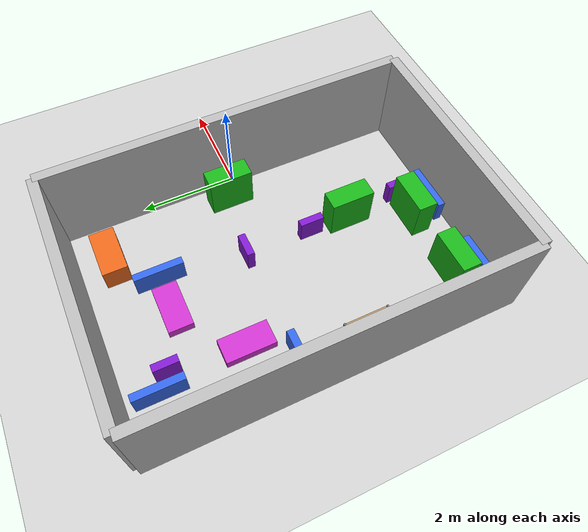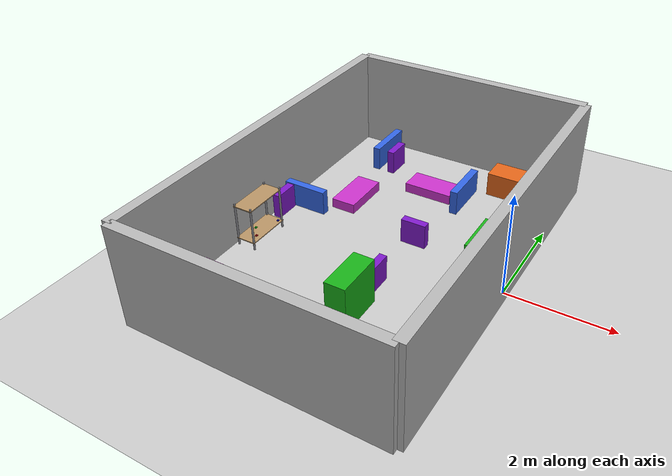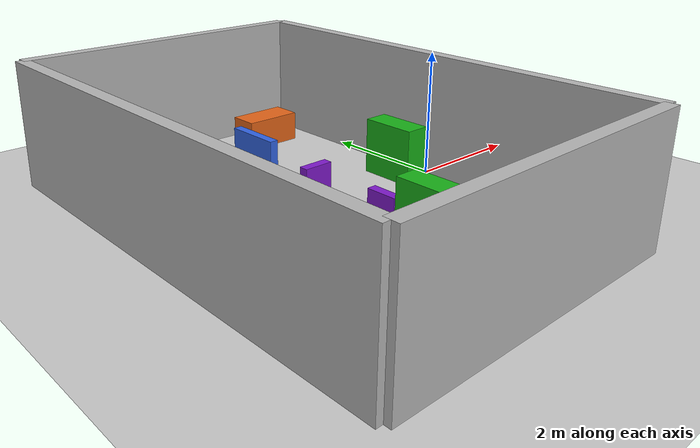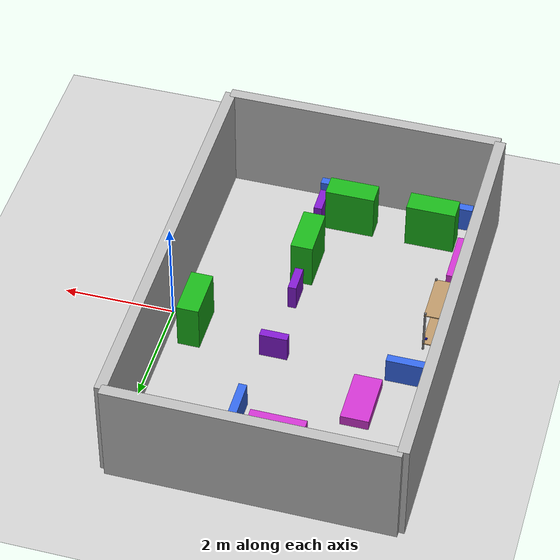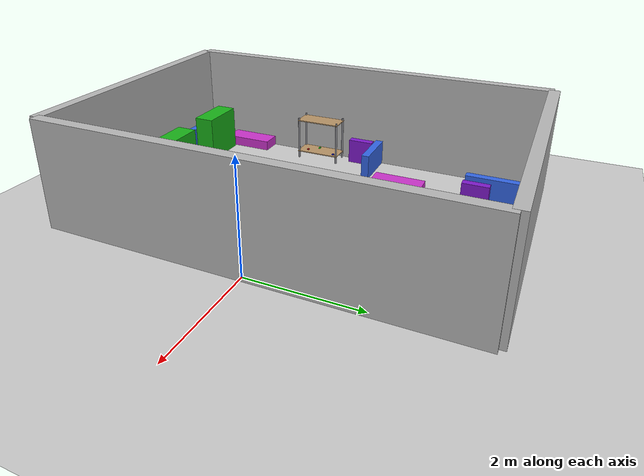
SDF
<sdf version="1.9">
 <world name="empty">
  <model name="room">
   <static>true</static>
   <link name="north_wall">
    <pose>-2.5 3.75 1 0 -0 0</pose>
    <collision name="c"><geometry><box><size>5 0.2 2</size></box></geometry></collision>
    <visual name="v"><geometry><box><size>5 0.2 2</size></box></geometry></visual>
    <inertial>
     <mass>1</mass>
     <inertia><ixx>1</ixx><ixy>0</ixy><ixz>0</ixz><iyy>1</iyy><iyz>0</iyz><izz>1</izz></inertia>
    </inertial>
   </link>
   <link name="south_wall">
    <pose>-2.5 -3.75 1 0 -0 0</pose>
    <collision name="c"><geometry><box><size>5 0.2 2</size></box></geometry></collision>
    <visual name="v"><geometry><box><size>5 0.2 2</size></box></geometry></visual>
    <inertial>
     <mass>1</mass>
     <inertia><ixx>1</ixx><ixy>0</ixy><ixz>0</ixz><iyy>1</iyy><iyz>0</iyz><izz>1</izz></inertia>
    </inertial>
   </link>
   <link name="east_wall">
    <pose>0 0 1 0 -0 1.5708</pose>
    <collision name="c"><geometry><box><size>7.5 0.2 2</size></box></geometry></collision>
    <visual name="v"><geometry><box><size>7.5 0.2 2</size></box></geometry></visual>
    <inertial>
     <mass>1</mass>
     <inertia><ixx>1</ixx><ixy>0</ixy><ixz>0</ixz><iyy>1</iyy><iyz>0</iyz><izz>1</izz></inertia>
    </inertial>
   </link>
   <link name="west_wall">
    <pose>-5 0 1 0 -0 1.5708</pose>
    <collision name="c"><geometry><box><size>7.5 0.2 2</size></box></geometry></collision>
    <visual name="v"><geometry><box><size>7.5 0.2 2</size></box></geometry></visual>
    <inertial>
     <mass>1</mass>
     <inertia><ixx>1</ixx><ixy>0</ixy><ixz>0</ixz><iyy>1</iyy><iyz>0</iyz><izz>1</izz></inertia>
    </inertial>
   </link>
  </model>
  <model name="ground_plane">
   <static>true</static>
   <link name="link">
    <collision name="surface">
     <geometry><plane><normal>0 0 1</normal><size>100 100</size></plane></geometry>
     <surface><friction><ode><mu>60</mu><mu2>0</mu2></ode></friction></surface>
    </collision>
    <visual name="surface">
     <geometry><plane><normal>0 0 1</normal><size>100 100</size></plane></geometry>
     <material><ambient>0.8 0.8 0.8 1</ambient><diffuse>0.8 0.8 0.8 1</diffuse></material>
    </visual>
    <inertial>
     <mass>1</mass>
     <inertia><ixx>1</ixx><ixy>0</ixy><ixz>0</ixz><iyy>1</iyy><iyz>0</iyz><izz>1</izz></inertia>
    </inertial>
   </link>
  </model>
  <model name="cc_1">
   <static>true</static>
   <pose>-1 3 0.25 0 0 0</pose>
   <link name="link">
    <inertial>
     <inertia><ixx>0.16666</ixx><ixy>0</ixy><ixz>0</ixz><iyy>0.16666</iyy><iyz>0</iyz><izz>0.16666</izz></inertia>
     <mass>1</mass>
    </inertial>
    <collision name="c">
     <geometry><box><size>1 0.5 0.5</size></box></geometry>
     <surface><friction><ode><mu>10</mu><mu2>10</mu2></ode></friction></surface>
    </collision>
    <visual name="v">
     <geometry><box><size>1 0.5 0.5</size></box></geometry>
     <material><ambient>0.9 0.4 0.1 1</ambient><diffuse>0.9 0.4 0.1 1</diffuse></material>
    </visual>
   </link>
  </model>
  <model name="wb_top">
   <static>true</static>
   <pose>-2.5 2.25 0.1 0 0 0</pose>
   <link name="link">
    <inertial>
     <inertia><ixx>0.16666</ixx><ixy>0</ixy><ixz>0</ixz><iyy>0.16666</iyy><iyz>0</iyz><izz>0.16666</izz></inertia>
     <mass>1</mass>
    </inertial>
    <collision name="c">
     <geometry><box><size>1 0.5 0.2</size></box></geometry>
     <surface><friction><ode><mu>10</mu><mu2>10</mu2></ode></friction></surface>
    </collision>
    <visual name="v">
     <geometry><box><size>1 0.5 0.2</size></box></geometry>
     <material><ambient>0.8 0.2 0.8 1</ambient><diffuse>0.8 0.2 0.8 1</diffuse></material>
    </visual>
   </link>
  </model>
  <model name="wb_left">
   <static>true</static>
   <pose>-3.75 1.25 0.1 0 0 1.5708</pose>
   <link name="link">
    <inertial>
     <inertia><ixx>0.16666</ixx><ixy>0</ixy><ixz>0</ixz><iyy>0.16666</iyy><iyz>0</iyz><izz>0.16666</izz></inertia>
     <mass>1</mass>
    </inertial>
    <collision name="c">
     <geometry><box><size>1 0.5 0.2</size></box></geometry>
     <surface><friction><ode><mu>10</mu><mu2>10</mu2></ode></friction></surface>
    </collision>
    <visual name="v">
     <geometry><box><size>1 0.5 0.2</size></box></geometry>
     <material><ambient>0.8 0.2 0.8 1</ambient><diffuse>0.8 0.2 0.8 1</diffuse></material>
    </visual>
   </link>
  </model>
  <model name="wb_bottom">
   <static>true</static>
   <pose>-4.75 -2.5 0.1 0 0 1.5708</pose>
   <link name="link">
    <inertial>
     <inertia><ixx>0.16666</ixx><ixy>0</ixy><ixz>0</ixz><iyy>0.16666</iyy><iyz>0</iyz><izz>0.16666</izz></inertia>
     <mass>1</mass>
    </inertial>
    <collision name="c">
     <geometry><box><size>1 0.5 0.2</size></box></geometry>
     <surface><friction><ode><mu>10</mu><mu2>10</mu2></ode></friction></surface>
    </collision>
    <visual name="v">
     <geometry><box><size>1 0.5 0.2</size></box></geometry>
     <material><ambient>0.8 0.2 0.8 1</ambient><diffuse>0.8 0.2 0.8 1</diffuse></material>
    </visual>
   </link>
  </model>
  <model name="s_top">
   <pose>-2.5 -3 0.45 0 0 1.5708</pose>
   <static>true</static>
   <link name="link">
    <inertial>
     <inertia><ixx>0.16666</ixx><ixy>0</ixy><ixz>0</ixz><iyy>0.16666</iyy><iyz>0</iyz><izz>0.16666</izz></inertia>
     <mass>1</mass>
    </inertial>
    <collision name="c">
     <geometry><box><size>0.4 0.9 0.9</size></box></geometry>
     <surface><friction><ode><mu>10</mu><mu2>10</mu2></ode></friction></surface>
    </collision>
    <visual name="v">
     <geometry><box><size>0.4 0.9 0.9</size></box></geometry>
     <material><ambient>0.1 0.7 0.1 1</ambient><diffuse>0.1 0.7 0.1 1</diffuse></material>
    </visual>
   </link>
  </model>
  <model name="s_left_mid">
   <pose>-4.0 -3 0.45 0 0 1.5708</pose>
   <static>true</static>
   <link name="link">
    <inertial>
     <inertia><ixx>0.16666</ixx><ixy>0</ixy><ixz>0</ixz><iyy>0.16666</iyy><iyz>0</iyz><izz>0.16666</izz></inertia>
     <mass>1</mass>
    </inertial>
    <collision name="c">
     <geometry><box><size>0.4 0.9 0.9</size></box></geometry>
     <surface><friction><ode><mu>10</mu><mu2>10</mu2></ode></friction></surface>
    </collision>
    <visual name="v">
     <geometry><box><size>0.4 0.9 0.9</size></box></geometry>
     <material><ambient>0.1 0.7 0.1 1</ambient><diffuse>0.1 0.7 0.1 1</diffuse></material>
    </visual>
   </link>
  </model>
  <model name="s_center_mid">
   <pose>-2 -1.75 0.45 0 0 0</pose>
   <static>true</static>
   <link name="link">
    <inertial>
     <inertia><ixx>0.16666</ixx><ixy>0</ixy><ixz>0</ixz><iyy>0.16666</iyy><iyz>0</iyz><izz>0.16666</izz></inertia>
     <mass>1</mass>
    </inertial>
    <collision name="c">
     <geometry><box><size>0.4 0.9 0.9</size></box></geometry>
     <surface><friction><ode><mu>10</mu><mu2>10</mu2></ode></friction></surface>
    </collision>
    <visual name="v">
     <geometry><box><size>0.4 0.9 0.9</size></box></geometry>
     <material><ambient>0.1 0.7 0.1 1</ambient><diffuse>0.1 0.7 0.1 1</diffuse></material>
    </visual>
   </link>
  </model>
  <model name="s_bot_left_shelf_unit">
   <static>true</static>
   <pose>-4.6500 -0.75 0.0 0 0 1.5708</pose>
   <link name="post_front_right">
    <pose>0.43 -0.18 0.45 0 0 0</pose>
    <collision name="post_front_right_collision">
     <geometry><cylinder><radius>0.02</radius><length>0.9</length></cylinder></geometry>
    </collision>
    <visual name="post_front_right_visual">
     <geometry><cylinder><radius>0.02</radius><length>0.9</length></cylinder></geometry>
     <material><ambient>0.5 0.5 0.52 1</ambient><diffuse>0.5 0.5 0.52 1</diffuse></material>
    </visual>
   </link>
   <link name="post_front_left">
    <pose>0.43 0.18 0.45 0 0 0</pose>
    <collision name="post_front_left_collision">
     <geometry><cylinder><radius>0.02</radius><length>0.9</length></cylinder></geometry>
    </collision>
    <visual name="post_front_left_visual">
     <geometry><cylinder><radius>0.02</radius><length>0.9</length></cylinder></geometry>
     <material><ambient>0.5 0.5 0.52 1</ambient><diffuse>0.5 0.5 0.52 1</diffuse></material>
    </visual>
   </link>
   <link name="post_back_right">
    <pose>-0.43 -0.18 0.45 0 0 0</pose>
    <collision name="post_back_right_collision">
     <geometry><cylinder><radius>0.02</radius><length>0.9</length></cylinder></geometry>
    </collision>
    <visual name="post_back_right_visual">
     <geometry><cylinder><radius>0.02</radius><length>0.9</length></cylinder></geometry>
     <material><ambient>0.5 0.5 0.52 1</ambient><diffuse>0.5 0.5 0.52 1</diffuse></material>
    </visual>
   </link>
   <link name="post_back_left">
    <pose>-0.43 0.18 0.45 0 0 0</pose>
    <collision name="post_back_left_collision">
     <geometry><cylinder><radius>0.02</radius><length>0.9</length></cylinder></geometry>
    </collision>
    <visual name="post_back_left_visual">
     <geometry><cylinder><radius>0.02</radius><length>0.9</length></cylinder></geometry>
     <material><ambient>0.5 0.5 0.52 1</ambient><diffuse>0.5 0.5 0.52 1</diffuse></material>
    </visual>
   </link>
   <link name="shelf_row_bottom">
    <pose>0 0 0.15 0 0 0</pose>
    <collision name="shelf_row_bottom_collision">
     <geometry><box><size>0.9 0.4 0.02</size></box></geometry>
    </collision>
    <visual name="shelf_row_bottom_visual">
     <geometry><box><size>0.9 0.4 0.02</size></box></geometry>
     <material><ambient>0.72 0.58 0.40 1</ambient><diffuse>0.72 0.58 0.40 1</diffuse></material>
    </visual>
   </link>
   <link name="shelf_row_top">
    <pose>0 0 0.85 0 0 0</pose>
    <collision name="shelf_row_top_collision">
     <geometry><box><size>0.9 0.4 0.02</size></box></geometry>
    </collision>
    <visual name="shelf_row_top_visual">
     <geometry><box><size>0.9 0.4 0.02</size></box></geometry>
     <material><ambient>0.72 0.58 0.40 1</ambient><diffuse>0.72 0.58 0.40 1</diffuse></material>
    </visual>
   </link>
  </model>
  <model name="s_bot_left_block_blue">
   <static>false</static>
   <link name="s_bot_left_block_blue_link">
    <pose>-4.5 -0.40 0.183 0 0 1.5708</pose>
    <inertial>
     <mass>0.01</mass>
     <inertia>
      <ixx>2.802e-6</ixx>
      <iyy>2.912e-6</iyy>
      <izz>3.631e-6</izz>
      <ixy>0</ixy>
      <ixz>0</ixz>
      <iyz>0</iyz>
     </inertia>
    </inertial>
    <collision name="collision">
     <geometry><mesh><uri>model://meshes/2x2_base_simplified.obj</uri><scale>1.2 1.2 1.2</scale></mesh></geometry>
    </collision>
    <visual name="visual">
     <geometry><mesh><uri>model://meshes/2x2_base_simplified.obj</uri><scale>1.2 1.2 1.2</scale></mesh></geometry>
     <material><ambient>0.1 0.1 0.8 1</ambient><diffuse>0.1 0.1 0.8 1</diffuse></material>
    </visual>
   </link>
  </model>
  <model name="s_bot_left_block_green">
   <static>false</static>
   <link name="s_bot_left_block_green_link">
    <pose>-4.72 -0.80 0.183 0 0 1.5708</pose>
    <inertial>
     <mass>0.01</mass>
     <inertia>
      <ixx>2.802e-6</ixx>
      <iyy>2.912e-6</iyy>
      <izz>3.631e-6</izz>
      <ixy>0</ixy>
      <ixz>0</ixz>
      <iyz>0</iyz>
     </inertia>
    </inertial>
    <collision name="collision">
     <geometry><mesh><uri>model://meshes/2x2_base_simplified.obj</uri><scale>1.2 1.2 1.2</scale></mesh></geometry>
    </collision>
    <visual name="visual">
     <geometry><mesh><uri>model://meshes/2x2_base_simplified.obj</uri><scale>1.2 1.2 1.2</scale></mesh></geometry>
     <material><ambient>0.1 0.8 0.1 1</ambient><diffuse>0.1 0.8 0.1 1</diffuse></material>
    </visual>
   </link>
  </model>
  <model name="s_bot_left_block_red">
   <static>false</static>
   <link name="s_bot_left_block_red_link">
    <pose>-4.55 -1.0 0.183 0 0 1.5708</pose>
    <inertial>
     <mass>0.01</mass>
     <inertia>
      <ixx>2.802e-6</ixx>
      <iyy>2.912e-6</iyy>
      <izz>3.631e-6</izz>
      <ixy>0</ixy>
      <ixz>0</ixz>
      <iyz>0</iyz>
     </inertia>
    </inertial>
    <collision name="collision">
     <geometry><mesh><uri>model://meshes/2x2_base_simplified.obj</uri><scale>1.2 1.2 1.2</scale></mesh></geometry>
    </collision>
    <visual name="visual">
     <geometry><mesh><uri>model://meshes/2x2_base_simplified.obj</uri><scale>1.2 1.2 1.2</scale></mesh></geometry>
     <material><ambient>0.8 0.1 0.1 1</ambient><diffuse>0.8 0.1 0.1 1</diffuse></material>
    </visual>
   </link>
  </model>
  <model name="s_bot_center">
   <static>true</static>
   <pose>-0.5 0.25 0.45 0 0 0</pose>
   <static>true</static>
   <link name="link">
    <inertial>
     <inertia><ixx>0.16666</ixx><ixy>0</ixy><ixz>0</ixz><iyy>0.16666</iyy><iyz>0</iyz><izz>0.16666</izz></inertia>
     <mass>1</mass>
    </inertial>
    <collision name="c">
     <geometry><box><size>0.4 0.9 0.9</size></box></geometry>
     <surface><friction><ode><mu>1000</mu><mu2>100</mu2></ode></friction></surface>
    </collision>
    <visual name="v">
     <geometry><box><size>0.4 0.9 0.9</size></box></geometry>
     <material><ambient>0.1 0.7 0.1 1</ambient><diffuse>0.1 0.7 0.1 1</diffuse></material>
    </visual>
   </link>
  </model>
  <model name="bw_north_L">
   <static>true</static>
   <pose>-1.80 2.25 0.25 0 0 1.5708</pose>
   <link name="link">
    <inertial>
     <inertia><ixx>0.16666</ixx><ixy>0</ixy><ixz>0</ixz><iyy>0.16666</iyy><iyz>0</iyz><izz>0.16666</izz></inertia>
     <mass>1</mass>
    </inertial>
    <collision name="c">
     <geometry><box><size>1 0.15 0.5</size></box></geometry>
     <surface><friction><ode><mu>10</mu><mu2>10</mu2></ode></friction></surface>
    </collision>
    <visual name="v">
     <geometry><box><size>1 0.15 0.5</size></box></geometry>
     <material><ambient>0.2 0.4 0.9 1</ambient><diffuse>0.2 0.4 0.9 1</diffuse></material>
    </visual>
   </link>
  </model>
  <model name="bw_north_R">
   <static>true</static>
   <pose>-4 3.0 0.25 0 0 1.5708</pose>
   <link name="link">
    <inertial>
     <inertia><ixx>0.16666</ixx><ixy>0</ixy><ixz>0</ixz><iyy>0.16666</iyy><iyz>0</iyz><izz>0.16666</izz></inertia>
     <mass>1</mass>
    </inertial>
    <collision name="c">
     <geometry><box><size>1 0.15 0.5</size></box></geometry>
     <surface><friction><ode><mu>1000</mu><mu2>10000</mu2></ode></friction></surface>
    </collision>
    <visual name="v">
     <geometry><box><size>1 0.15 0.5</size></box></geometry>
     <material><ambient>0.2 0.4 0.9 1</ambient><diffuse>0.2 0.4 0.9 1</diffuse></material>
    </visual>
   </link>
  </model>
  <model name="bw_east_N">
   <static>true</static>
   <pose>-4.5 0.5 0.25 0 0 0</pose>
   <link name="link">
    <inertial>
     <inertia><ixx>0.16666</ixx><ixy>0</ixy><ixz>0</ixz><iyy>0.16666</iyy><iyz>0</iyz><izz>0.16666</izz></inertia>
     <mass>1</mass>
    </inertial>
    <collision name="c">
     <geometry><box><size>1 0.15 0.5</size></box></geometry>
     <surface><friction><ode><mu>10</mu><mu2>10</mu2></ode></friction></surface>
    </collision>
    <visual name="v">
     <geometry><box><size>1 0.15 0.5</size></box></geometry>
     <material><ambient>0.2 0.4 0.9 1</ambient><diffuse>0.2 0.4 0.9 1</diffuse></material>
    </visual>
   </link>
  </model>
  <model name="bw_south_L">
   <static>true</static>
   <pose>-4.15 -3.5 0.25 0 0 0</pose>
   <link name="link">
    <inertial>
     <inertia><ixx>0.16666</ixx><ixy>0</ixy><ixz>0</ixz><iyy>0.16666</iyy><iyz>0</iyz><izz>0.16666</izz></inertia>
     <mass>1</mass>
    </inertial>
    <collision name="c">
     <geometry><box><size>1 0.15 0.5</size></box></geometry>
     <surface><friction><ode><mu>10</mu><mu2>10</mu2></ode></friction></surface>
    </collision>
    <visual name="v">
     <geometry><box><size>1 0.15 0.5</size></box></geometry>
     <material><ambient>0.2 0.4 0.9 1</ambient><diffuse>0.2 0.4 0.9 1</diffuse></material>
    </visual>
   </link>
  </model>
  <model name="bw_south_R">
   <static>true</static>
   <pose>-2.3 -3.5 0.25 0 0 0</pose>
   <link name="link">
    <inertial>
     <inertia><ixx>0.16666</ixx><ixy>0</ixy><ixz>0</ixz><iyy>0.16666</iyy><iyz>0</iyz><izz>0.16666</izz></inertia>
     <mass>1</mass>
    </inertial>
    <collision name="c">
     <geometry><box><size>1 0.15 0.5</size></box></geometry>
     <surface><friction><ode><mu>10</mu><mu2>10</mu2></ode></friction></surface>
    </collision>
    <visual name="v">
     <geometry><box><size>1 0.15 0.5</size></box></geometry>
     <material><ambient>0.2 0.4 0.9 1</ambient><diffuse>0.2 0.4 0.9 1</diffuse></material>
    </visual>
   </link>
  </model>
  <model name="pw_mid_1">
   <static>true</static>
   <pose>-3.65 2.75 0.25 0 0 1.5708</pose>
   <link name="link">
    <inertial>
     <inertia><ixx>0.16666</ixx><ixy>0</ixy><ixz>0</ixz><iyy>0.16666</iyy><iyz>0</iyz><izz>0.16666</izz></inertia>
     <mass>1</mass>
    </inertial>
    <collision name="c">
     <geometry><box><size>0.5 0.15 0.5</size></box></geometry>
     <surface><friction><ode><mu>10</mu><mu2>10</mu2></ode></friction></surface>
    </collision>
    <visual name="v">
     <geometry><box><size>0.5 0.15 0.5</size></box></geometry>
     <material><ambient>0.5 0.1 0.8 1</ambient><diffuse>0.5 0.1 0.8 1</diffuse></material>
    </visual>
   </link>
  </model>
  <model name="pw_mid_2">
   <static>true</static>
   <pose>-4.75 0.15 0.25 0 0 1.5708</pose>
   <link name="link">
    <inertial>
     <inertia><ixx>0.16666</ixx><ixy>0</ixy><ixz>0</ixz><iyy>0.16666</iyy><iyz>0</iyz><izz>0.16666</izz></inertia>
     <mass>1</mass>
    </inertial>
    <collision name="c">
     <geometry><box><size>0.5 0.15 0.5</size></box></geometry>
     <surface><friction><ode><mu>10</mu><mu2>10</mu2></ode></friction></surface>
    </collision>
    <visual name="v">
     <geometry><box><size>0.5 0.15 0.5</size></box></geometry>
     <material><ambient>0.5 0.1 0.8 1</ambient><diffuse>0.5 0.1 0.8 1</diffuse></material>
    </visual>
   </link>
  </model>
  <model name="pw_mid_3">
   <static>true</static>
   <pose>-2 0.5 0.25 0 0 0</pose>
   <link name="link">
    <inertial>
     <inertia><ixx>0.16666</ixx><ixy>0</ixy><ixz>0</ixz><iyy>0.16666</iyy><iyz>0</iyz><izz>0.16666</izz></inertia>
     <mass>1</mass>
    </inertial>
    <collision name="c">
     <geometry><box><size>0.5 0.15 0.5</size></box></geometry>
     <surface><friction><ode><mu>10</mu><mu2>10</mu2></ode></friction></surface>
    </collision>
    <visual name="v">
     <geometry><box><size>0.5 0.15 0.5</size></box></geometry>
     <material><ambient>0.5 0.1 0.8 1</ambient><diffuse>0.5 0.1 0.8 1</diffuse></material>
    </visual>
   </link>
  </model>
  <model name="pw_mid_4">
   <static>true</static>
   <pose>-2 -0.92 0.25 0 0 1.5708</pose>
   <link name="link">
    <inertial>
     <inertia><ixx>0.16666</ixx><ixy>0</ixy><ixz>0</ixz><iyy>0.16666</iyy><iyz>0</iyz><izz>0.16666</izz></inertia>
     <mass>1</mass>
    </inertial>
    <collision name="c">
     <geometry><box><size>0.5 0.15 0.5</size></box></geometry>
     <surface><friction><ode><mu>10</mu><mu2>10</mu2></ode></friction></surface>
    </collision>
    <visual name="v">
     <geometry><box><size>0.5 0.15 0.5</size></box></geometry>
     <material><ambient>0.5 0.1 0.8 1</ambient><diffuse>0.5 0.1 0.8 1</diffuse></material>
    </visual>
   </link>
  </model>
  <model name="pw_mid_7">
   <static>true</static>
   <pose>-1.92 -3 0.25 0 0 1.5708</pose>
   <link name="link">
    <inertial>
     <inertia><ixx>0.16666</ixx><ixy>0</ixy><ixz>0</ixz><iyy>0.16666</iyy><iyz>0</iyz><izz>0.16666</izz></inertia>
     <mass>1</mass>
    </inertial>
    <collision name="c">
     <geometry><box><size>0.5 0.15 0.5</size></box></geometry>
     <surface><friction><ode><mu>10</mu><mu2>10</mu2></ode></friction></surface>
    </collision>
    <visual name="v">
     <geometry><box><size>0.5 0.15 0.5</size></box></geometry>
     <material><ambient>0.5 0.1 0.8 1</ambient><diffuse>0.5 0.1 0.8 1</diffuse></material>
    </visual>
   </link>
  </model>
 </world>
</sdf>
